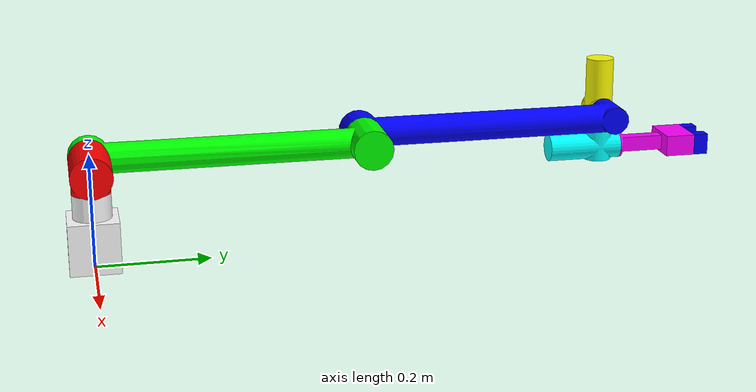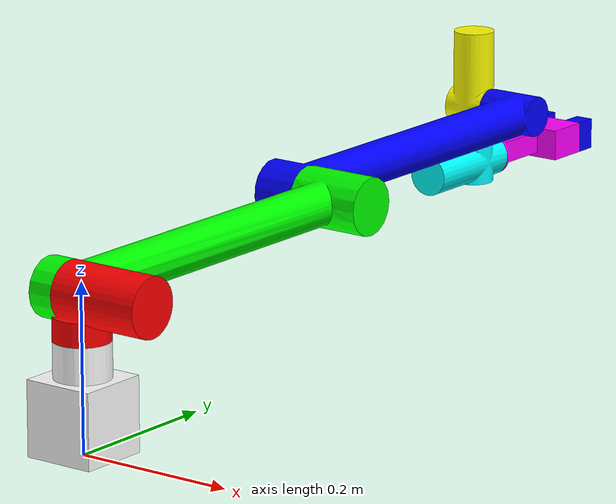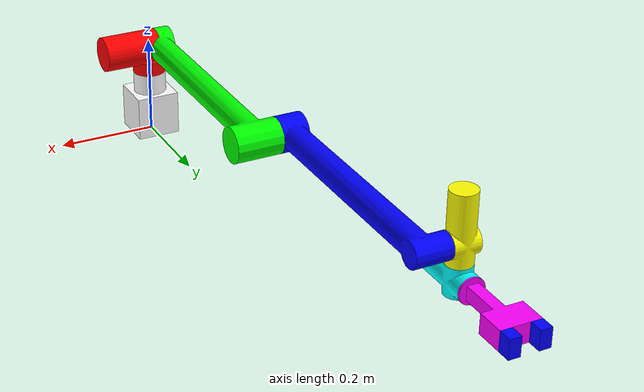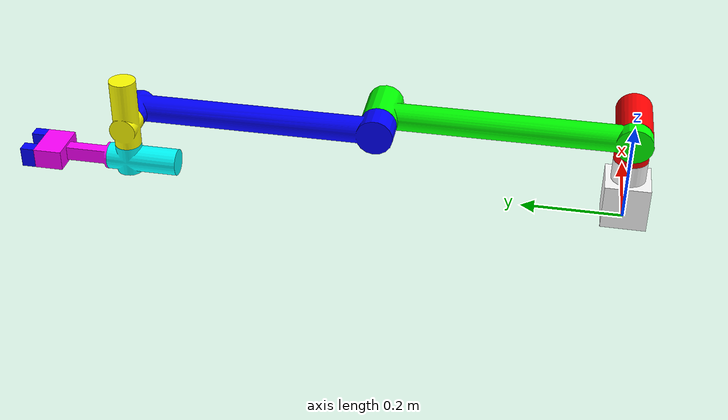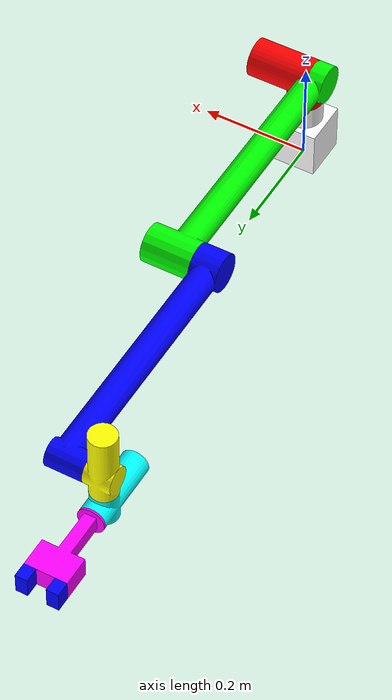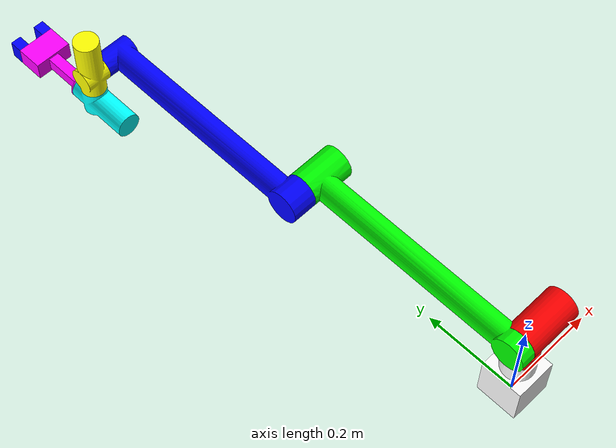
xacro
<?xml version="1.0" encoding="utf-8"?>
<robot
  name="robot_5">

  <link name="world" />
  <joint name="fixed" type="fixed">
    <parent link="world" />
    <child link="base_link" />
  </joint>
  <link

    name="base_link">
    <visual>
      <origin
        xyz="0 0 0"
        rpy="0 0 0" />
      <geometry>
        <mesh
          filename="package://robot_5/meshes/base_link.STL" />
      </geometry>
      <material
        name="">
        <color
          rgba="1 1 1 1" />
      </material>
    </visual>
    <collision>
      <origin
        xyz="0 0 0"
        rpy="0 0 0" />
      <geometry>
        <mesh
          filename="package://robot_5/meshes/base_link.STL" />
      </geometry>
    </collision>
  </link>
  <link
    name="az_module">
    <inertial>
      <origin
        xyz="0.035747 1.6483E-08 0.047495"
        rpy="0 0 0" />
      <mass
        value="0.54194" />
      <inertia
        ixx="0.00044309"
        ixy="5.4788E-13"
        ixz="-0.00012991"
        iyy="0.00094459"
        iyz="1.9077E-10"
        izz="0.00084223" />
    </inertial>
    <visual>
      <origin
        xyz="0 0 0"
        rpy="0 0 0" />
      <geometry>
        <mesh
          filename="package://robot_5/meshes/az_module.STL" />
      </geometry>
      <material
        name="">
        <color
          rgba="1 0 0 1" />
      </material>
    </visual>
    <collision>
      <origin
        xyz="0 0 0"
        rpy="0 0 0" />
      <geometry>
        <mesh
          filename="package://robot_5/meshes/az_module.STL" />
      </geometry>
    </collision>
  </link>
  <joint
    name="J1"
    type="continuous">
    <origin
      xyz="0 0 0.133"
      rpy="0 0 0" />
    <parent
      link="base_link" />
    <child
      link="az_module" />
    <axis
      xyz="0 0 1" />
    <limit
      lower="-3.14"
      upper="3.14"
      effort="0"
      velocity="0" />
    <dynamics
      damping="0.1" />
  </joint>
  <link
    name="up_arm">
    <inertial>
      <origin
        xyz="-0.017464 0.19896 0.19896"
        rpy="0 0 0" />
      <mass
        value="1.4184" />
      <inertia
        ixx="0.040355"
        ixy="-0.00080214"
        ixz="-0.00080214"
        iyy="0.020667"
        iyz="-0.019858"
        izz="0.020667" />
    </inertial>
    <visual>
      <origin
        xyz="0 0 0"
        rpy="0 0 0" />
      <geometry>
        <mesh
          filename="package://robot_5/meshes/up_arm.STL" />
      </geometry>
      <material
        name="">
        <color
          rgba="0 1 0 1" />
      </material>
    </visual>
    <collision>
      <origin
        xyz="0 0 0"
        rpy="0 0 0" />
      <geometry>
        <mesh
          filename="package://robot_5/meshes/up_arm.STL" />
      </geometry>
    </collision>
  </link>
  <joint
    name="J2"
    type="continuous">
    <origin
      xyz="0 0 0.054"
      rpy="-0.7854 0 0" />
    <parent
      link="az_module" />
    <child
      link="up_arm" />
    <axis
      xyz="1 0 0" />
    <limit
      lower="-3.14"
      upper="3.14"
      effort="0"
      velocity="0" />
    <dynamics
      damping="0.1" />
  </joint>
  <link
    name="low_arm">
    <inertial>
      <origin
        xyz="-0.02744 0.16183 -0.16183"
        rpy="0 0 0" />
      <mass
        value="1.2429" />
      <inertia
        ixx="0.03308"
        ixy="0.0002475"
        ixz="-0.0002475"
        iyy="0.016811"
        iyz="0.016298"
        izz="0.016812" />
    </inertial>
    <visual>
      <origin
        xyz="0 0 0"
        rpy="0 0 0" />
      <geometry>
        <mesh
          filename="package://robot_5/meshes/low_arm.STL" />
      </geometry>
      <material
        name="">
        <color
          rgba="0 0 1 1" />
      </material>
    </visual>
    <collision>
      <origin
        xyz="0 0 0"
        rpy="0 0 0" />
      <geometry>
        <mesh
          filename="package://robot_5/meshes/low_arm.STL" />
      </geometry>
    </collision>
  </link>
  <joint
    name="J3"
    type="continuous">
    <origin
      xyz="-0.055297 0.34083 0.34083"
      rpy="1.5708 0 0" />
    <parent
      link="up_arm" />
    <child
      link="low_arm" />
    <axis
      xyz="1 0 0" />
    <limit
      lower="-3.14"
      upper="3.14"
      effort="0"
      velocity="0" />
    <dynamics
      damping="0.1" />
  </joint>
  <link
    name="w1">
    <inertial>
      <origin
        xyz="-0.026 -1.676E-09 0.027508"
        rpy="0 0 0" />
      <mass
        value="0.29868" />
      <inertia
        ixx="0.00051022"
        ixy="-2.6742E-11"
        ixz="-1.3226E-10"
        iyy="0.00051306"
        iyz="1.8198E-11"
        izz="0.00010569" />
    </inertial>
    <visual>
      <origin
        xyz="0 0 0"
        rpy="0 0 0" />
      <geometry>
        <mesh
          filename="package://robot_5/meshes/w1.STL" />
      </geometry>
      <material
        name="">
        <color
          rgba="1 1 0 1" />
      </material>
    </visual>
    <collision>
      <origin
        xyz="0 0 0"
        rpy="0 0 0" />
      <geometry>
        <mesh
          filename="package://robot_5/meshes/w1.STL" />
      </geometry>
    </collision>
  </link>
  <joint
    name="J4"
    type="continuous">
    <origin
      xyz="-0.071803 0.33446 -0.33446"
      rpy="-0.7854 0 0" />
    <parent
      link="low_arm" />
    <child
      link="w1" />
    <axis
      xyz="1 0 0" />
    <limit
      lower="-3.14"
      upper="3.14"
      effort="0"
      velocity="0" />
    <dynamics
      damping="0.1" />
  </joint>
  <link
    name="w2">
    <inertial>
      <origin
        xyz="2.861E-08 -0.026423 -0.030857"
        rpy="0 0 0" />
      <mass
        value="0.31094" />
      <inertia
        ixx="0.0005339"
        ixy="2.3376E-11"
        ixz="2.701E-11"
        iyy="0.00011762"
        iyz="-9.3921E-06"
        izz="0.00052312" />
    </inertial>
    <visual>
      <origin
        xyz="0 0 0"
        rpy="0 0 0" />
      <geometry>
        <mesh
          filename="package://robot_5/meshes/w2.STL" />
      </geometry>
      <material
        name="">
        <color
          rgba="0 1 1 1" />
      </material>
    </visual>
    <collision>
      <origin
        xyz="0 0 0"
        rpy="0 0 0" />
      <geometry>
        <mesh
          filename="package://robot_5/meshes/w2.STL" />
      </geometry>
    </collision>
  </link>
  <joint
    name="J5"
    type="continuous">
    <origin
      xyz="-0.026 0 -0.0395"
      rpy="0 0 0" />
    <parent
      link="w1" />
    <child
      link="w2" />
    <axis
      xyz="0 0 1" />
    <limit
      lower="-3.14"
      upper="3.14"
      effort="0"
      velocity="0" />
    <dynamics
      damping="0.1" />
  </joint>
  <link
    name="w3">
    <inertial>
      <origin
        xyz="-0.00033202 0.09444 -6.2117E-12"
        rpy="0 0 0" />
      <mass
        value="0.23019" />
      <inertia
        ixx="0.0004277"
        ixy="1.495E-06"
        ixz="1.276E-12"
        iyy="0.00011992"
        iyz="2.7984E-14"
        izz="0.0003592" />
    </inertial>
    <visual>
      <origin
        xyz="0 0 0"
        rpy="0 0 0" />
      <geometry>
        <mesh
          filename="package://robot_5/meshes/w3.STL" />
      </geometry>
      <material
        name="">
        <color
          rgba="1 0 1 1" />
      </material>
    </visual>
    <collision>
      <origin
        xyz="0 0 0"
        rpy="0 0 0" />
      <geometry>
        <mesh
          filename="package://robot_5/meshes/w3.STL" />
      </geometry>
    </collision>
  </link>
  <joint
    name="J6"
    type="continuous">
    <origin
      xyz="0 0.0395 -0.032"
      rpy="0 -1.5708 0" />
    <parent
      link="w2" />
    <child
      link="w3" />
    <axis
      xyz="0 1 0" />
    <limit
      lower="-3.14"
      upper="3.14"
      effort="0"
      velocity="0" />
    <dynamics
      damping="0.1" />
  </joint>
  <link
    name="fing1">
    <inertial>
      <origin
        xyz="-0.0193 -0.0135 0.01139"
        rpy="0 0 0" />
      <mass
        value="0.023742" />
      <inertia
        ixx="2.4691E-06"
        ixy="2.1935E-20"
        ixz="-8.7483E-21"
        iyy="3.9747E-06"
        iyz="-1.265E-20"
        izz="4.3902E-06" />
    </inertial>
    <visual>
      <origin
        xyz="0 0 0"
        rpy="0 0 0" />
      <geometry>
        <mesh
          filename="package://robot_5/meshes/fing1.STL" />
      </geometry>
      <material
        name="">
        <color
          rgba="0 0 1 1" />
      </material>
    </visual>
    <collision>
      <origin
        xyz="0 0 0"
        rpy="0 0 0" />
      <geometry>
        <mesh
          filename="package://robot_5/meshes/fing1.STL" />
      </geometry>
    </collision>
  </link>
  <joint
    name="F1"
    type="prismatic">
    <origin
      xyz="0.01885 0.1415 0.04"
      rpy="3.1416 0 0" />
    <parent
      link="w3" />
    <child
      link="fing1" />
    <axis
      xyz="0 0 -1" />
    <limit
      lower="-0.015"
      upper="0"
      effort="0"
      velocity="0" />
    <dynamics
      damping="0.1" />
  </joint>
  <link
    name="fing2">
    <inertial>
      <origin
        xyz="-0.0193 -0.0135 -0.01136"
        rpy="0 0 0" />
      <mass
        value="0.023678" />
      <inertia
        ixx="2.4569E-06"
        ixy="-3.5816E-20"
        ixz="-3.1178E-21"
        iyy="3.9584E-06"
        iyz="-8.8501E-15"
        izz="4.3784E-06" />
    </inertial>
    <visual>
      <origin
        xyz="0 0 0"
        rpy="0 0 0" />
      <geometry>
        <mesh
          filename="package://robot_5/meshes/fing2.STL" />
      </geometry>
      <material
        name="">
        <color
          rgba="0 0 1 1" />
      </material>
    </visual>
    <collision>
      <origin
        xyz="0 0 0"
        rpy="0 0 0" />
      <geometry>
        <mesh
          filename="package://robot_5/meshes/fing2.STL" />
      </geometry>
    </collision>
  </link>
  <joint
    name="F2"
    type="prismatic">
    <origin
      xyz="0.01885 0.1415 -0.04"
      rpy="3.1416 0 0" />
    <parent
      link="w3" />
    <child
      link="fing2" />
    <axis
      xyz="0 0 -1" />
    <limit
      lower="0"
      upper="0.015"
      effort="0"
      velocity="0" />
    <dynamics
      damping="0.1" />
  </joint>
</robot>
